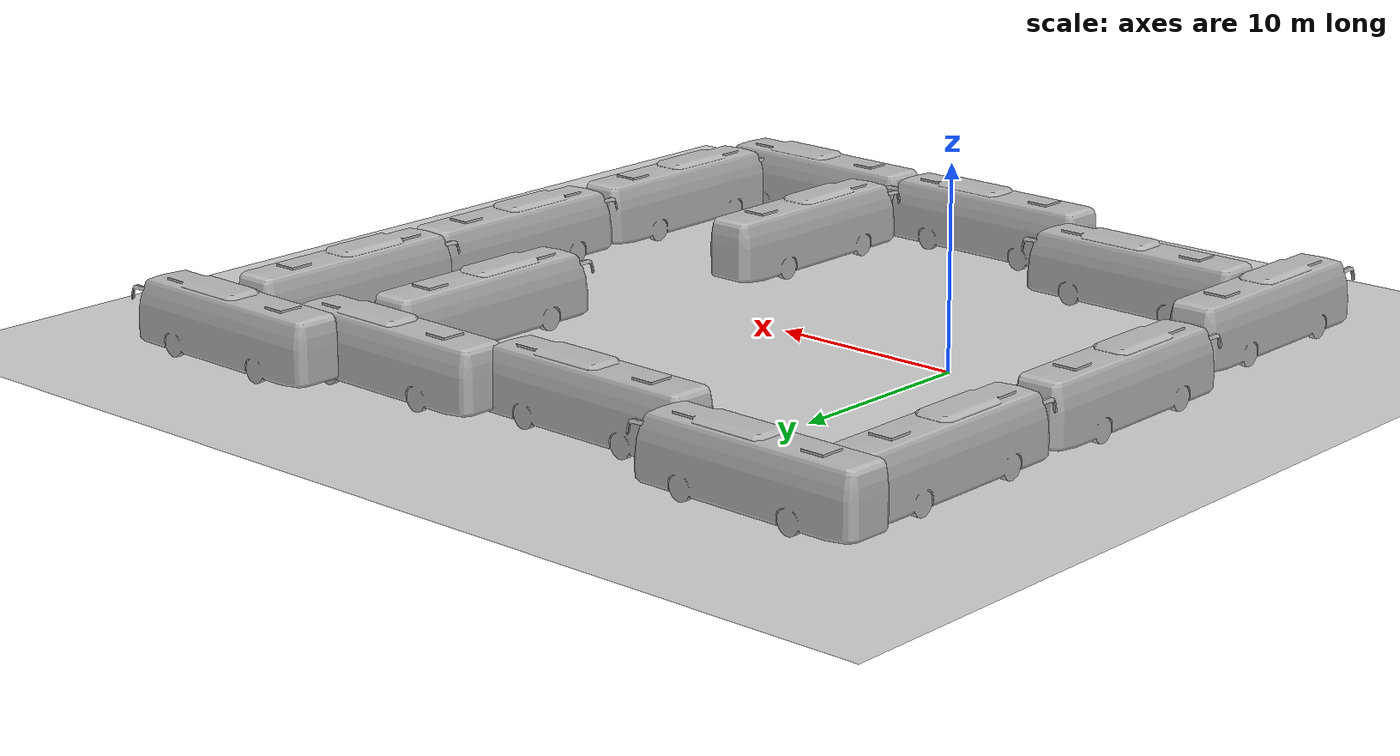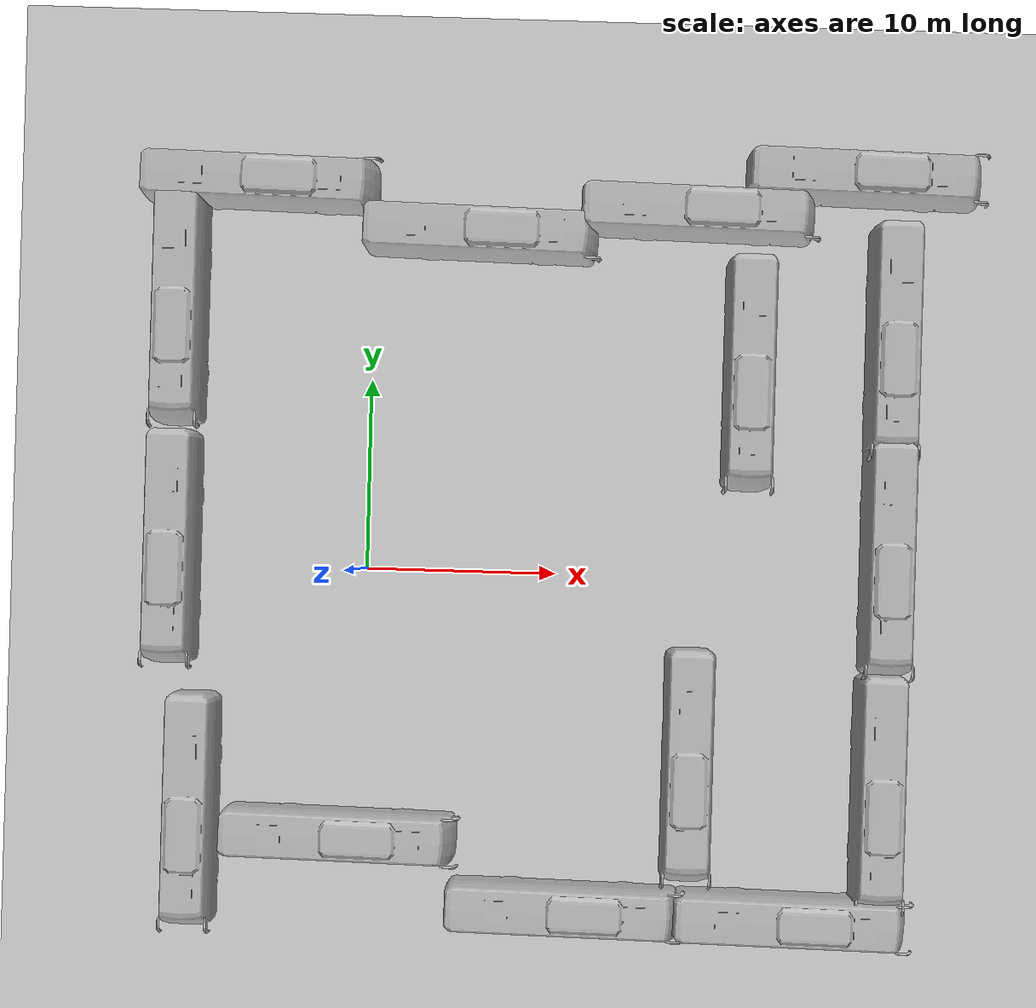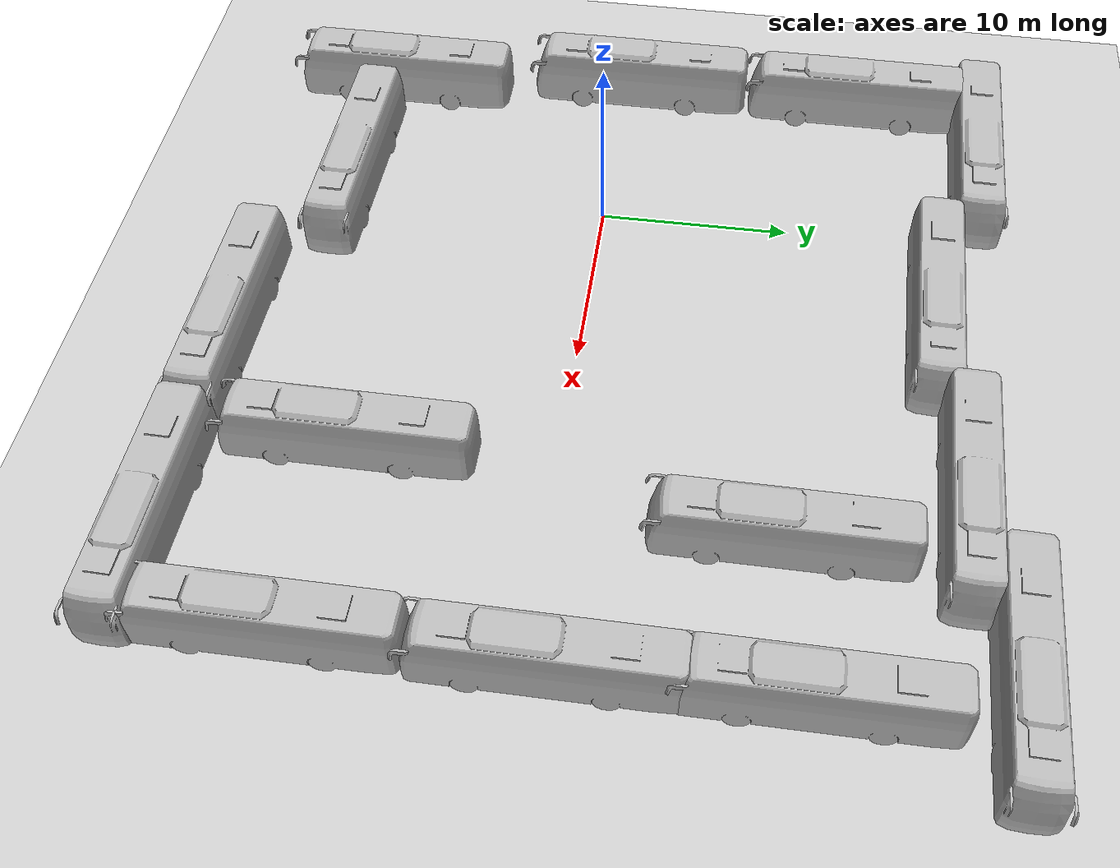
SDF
<sdf version="1.7">
 <world name="default">
  <light name="sun" type="directional">
   <pose>0 0 10 0 -0 0</pose>
   <diffuse>0.8 0.8 0.8 1</diffuse>
   <specular>0.2 0.2 0.2 1</specular>
   <attenuation>
    <range>1000</range>
    <constant>0.9</constant>
    <linear>0.01</linear>
    <quadratic>0.001</quadratic>
   </attenuation>
   <direction>-0.5 0.1 -0.9</direction>
   <spot><inner_angle>0</inner_angle><outer_angle>0</outer_angle><falloff>0</falloff></spot>
  </light>
  <model name="ground_plane">
   <static>1</static>
   <link name="link">
    <collision name="collision">
     <geometry><plane><normal>0 0 1</normal><size>100 100</size></plane></geometry>
     <surface><friction><ode><mu>100</mu><mu2>50</mu2></ode></friction></surface>
    </collision>
    <visual name="visual">
     <cast_shadows>0</cast_shadows>
     <geometry><plane><normal>0 0 1</normal><size>100 100</size></plane></geometry>
     <material>
      <script><uri>file://media/materials/scripts/gazebo.material</uri><name>Gazebo/Grey</name></script>
     </material>
    </visual>
   </link>
  </model>
  <gravity>0 0 -9.8</gravity>
  <magnetic_field>6e-06 2.3e-05 -4.2e-05</magnetic_field>
  <atmosphere type="adiabatic"/>
  <physics type="ode">
   <max_step_size>0.001</max_step_size>
   <real_time_factor>1</real_time_factor>
   <real_time_update_rate>1000</real_time_update_rate>
  </physics>
  <scene><ambient>0.4 0.4 0.4 1</ambient><background>0.7 0.7 0.7 1</background><shadows>1</shadows></scene>
  <audio><device>default</device></audio>
  <spherical_coordinates>
   <surface_model>EARTH_WGS84</surface_model>
   <latitude_deg>0</latitude_deg>
   <longitude_deg>0</longitude_deg>
   <elevation>0</elevation>
   <heading_deg>0</heading_deg>
  </spherical_coordinates>
  <model name="bus">
   <static>1</static>
   <link name="link">
    <collision name="collision">
     <geometry><mesh><scale>0.01 0.01 0.01</scale><uri>model://bus/meshes/bus.obj</uri></mesh></geometry>
    </collision>
    <visual name="visual">
     <geometry><mesh><scale>0.01 0.01 0.01</scale><uri>model://bus/meshes/bus.obj</uri></mesh></geometry>
    </visual>
   </link>
   <pose>-10.0774 0.821677 0 0 -0 0</pose>
  </model>
  <model name="bus_clone">
   <static>1</static>
   <link name="link">
    <collision name="collision">
     <geometry><mesh><scale>0.01 0.01 0.01</scale><uri>model://bus/meshes/bus.obj</uri></mesh></geometry>
    </collision>
    <visual name="visual">
     <geometry><mesh><scale>0.01 0.01 0.01</scale><uri>model://bus/meshes/bus.obj</uri></mesh></geometry>
    </visual>
   </link>
   <pose>-10.0177 13.2978 0 0 -0 0</pose>
  </model>
  <model name="bus_clone_0">
   <static>1</static>
   <link name="link">
    <collision name="collision">
     <geometry><mesh><scale>0.01 0.01 0.01</scale><uri>model://bus/meshes/bus.obj</uri></mesh></geometry>
    </collision>
    <visual name="visual">
     <geometry><mesh><scale>0.01 0.01 0.01</scale><uri>model://bus/meshes/bus.obj</uri></mesh></geometry>
    </visual>
   </link>
   <pose>-8.7231 -12.8588 0 0 -0 0</pose>
  </model>
  <model name="bus_clone_1">
   <static>1</static>
   <link name="link">
    <collision name="collision">
     <geometry><mesh><scale>0.01 0.01 0.01</scale><uri>model://bus/meshes/bus.obj</uri></mesh></geometry>
    </collision>
    <visual name="visual">
     <geometry><mesh><scale>0.01 0.01 0.01</scale><uri>model://bus/meshes/bus.obj</uri></mesh></geometry>
    </visual>
   </link>
   <pose>17.2 -9.8502 0 0 -0 0</pose>
  </model>
  <model name="bus_clone_1_clone">
   <static>1</static>
   <link name="link">
    <collision name="collision">
     <geometry><mesh><scale>0.01 0.01 0.01</scale><uri>model://bus/meshes/bus.obj</uri></mesh></geometry>
    </collision>
    <visual name="visual">
     <geometry><mesh><scale>0.01 0.01 0.01</scale><uri>model://bus/meshes/bus.obj</uri></mesh></geometry>
    </visual>
   </link>
   <pose>-0.844983 -13.9208 0 0 -0 1.55226</pose>
  </model>
  <model name="bus_clone_1_clone_0">
   <static>1</static>
   <link name="link">
    <collision name="collision">
     <geometry><mesh><scale>0.01 0.01 0.01</scale><uri>model://bus/meshes/bus.obj</uri></mesh></geometry>
    </collision>
    <visual name="visual">
     <geometry><mesh><scale>0.01 0.01 0.01</scale><uri>model://bus/meshes/bus.obj</uri></mesh></geometry>
    </visual>
   </link>
   <pose>10.9298 -17.4711 0 0 -0 1.55226</pose>
  </model>
  <model name="bus_clone_1_clone_1">
   <static>1</static>
   <link name="link">
    <collision name="collision">
     <geometry><mesh><scale>0.01 0.01 0.01</scale><uri>model://bus/meshes/bus.obj</uri></mesh></geometry>
    </collision>
    <visual name="visual">
     <geometry><mesh><scale>0.01 0.01 0.01</scale><uri>model://bus/meshes/bus.obj</uri></mesh></geometry>
    </visual>
   </link>
   <pose>22.7815 -17.7074 0 0 -0 1.55226</pose>
  </model>
  <model name="bus_clone_2">
   <static>1</static>
   <link name="link">
    <collision name="collision">
     <geometry><mesh><scale>0.01 0.01 0.01</scale><uri>model://bus/meshes/bus.obj</uri></mesh></geometry>
    </collision>
    <visual name="visual">
     <geometry><mesh><scale>0.01 0.01 0.01</scale><uri>model://bus/meshes/bus.obj</uri></mesh></geometry>
    </visual>
   </link>
   <pose>27.2296 -10.9295 0 0 -0 0</pose>
  </model>
  <model name="bus_clone_3">
   <static>1</static>
   <link name="link">
    <collision name="collision">
     <geometry><mesh><scale>0.01 0.01 0.01</scale><uri>model://bus/meshes/bus.obj</uri></mesh></geometry>
    </collision>
    <visual name="visual">
     <geometry><mesh><scale>0.01 0.01 0.01</scale><uri>model://bus/meshes/bus.obj</uri></mesh></geometry>
    </visual>
   </link>
   <pose>27.3753 1.19888 0 0 -0 0</pose>
  </model>
  <model name="bus_clone_4">
   <static>1</static>
   <link name="link">
    <collision name="collision">
     <geometry><mesh><scale>0.01 0.01 0.01</scale><uri>model://bus/meshes/bus.obj</uri></mesh></geometry>
    </collision>
    <visual name="visual">
     <geometry><mesh><scale>0.01 0.01 0.01</scale><uri>model://bus/meshes/bus.obj</uri></mesh></geometry>
    </visual>
   </link>
   <pose>27.358 12.6173 0 0 -0 0</pose>
  </model>
  <model name="bus_clone_1_clone_1_clone">
   <static>1</static>
   <link name="link">
    <collision name="collision">
     <geometry><mesh><scale>0.01 0.01 0.01</scale><uri>model://bus/meshes/bus.obj</uri></mesh></geometry>
    </collision>
    <visual name="visual">
     <geometry><mesh><scale>0.01 0.01 0.01</scale><uri>model://bus/meshes/bus.obj</uri></mesh></geometry>
    </visual>
   </link>
   <pose>-5.82419 20.0722 0 0 -0 1.55226</pose>
  </model>
  <model name="bus_clone_1_clone_1_clone_0">
   <static>1</static>
   <link name="link">
    <collision name="collision">
     <geometry><mesh><scale>0.01 0.01 0.01</scale><uri>model://bus/meshes/bus.obj</uri></mesh></geometry>
    </collision>
    <visual name="visual">
     <geometry><mesh><scale>0.01 0.01 0.01</scale><uri>model://bus/meshes/bus.obj</uri></mesh></geometry>
    </visual>
   </link>
   <pose>5.70532 17.7185 0 0 -0 1.55226</pose>
  </model>
  <model name="bus_clone_1_clone_1_clone_1">
   <static>1</static>
   <link name="link">
    <collision name="collision">
     <geometry><mesh><scale>0.01 0.01 0.01</scale><uri>model://bus/meshes/bus.obj</uri></mesh></geometry>
    </collision>
    <visual name="visual">
     <geometry><mesh><scale>0.01 0.01 0.01</scale><uri>model://bus/meshes/bus.obj</uri></mesh></geometry>
    </visual>
   </link>
   <pose>17.0254 19.0914 0 0 -0 1.55226</pose>
  </model>
  <model name="bus_clone_1_clone_1_clone_2">
   <static>1</static>
   <link name="link">
    <collision name="collision">
     <geometry><mesh><scale>0.01 0.01 0.01</scale><uri>model://bus/meshes/bus.obj</uri></mesh></geometry>
    </collision>
    <visual name="visual">
     <geometry><mesh><scale>0.01 0.01 0.01</scale><uri>model://bus/meshes/bus.obj</uri></mesh></geometry>
    </visual>
   </link>
   <pose>25.6738 21.1377 0 0 -0 1.55226</pose>
  </model>
  <model name="bus_clone_3_clone">
   <static>1</static>
   <link name="link">
    <collision name="collision">
     <geometry><mesh><scale>0.01 0.01 0.01</scale><uri>model://bus/meshes/bus.obj</uri></mesh></geometry>
    </collision>
    <visual name="visual">
     <geometry><mesh><scale>0.01 0.01 0.01</scale><uri>model://bus/meshes/bus.obj</uri></mesh></geometry>
    </visual>
   </link>
   <pose>19.8651 10.6997 0 0 -0 0</pose>
  </model>
 </world>
</sdf>
